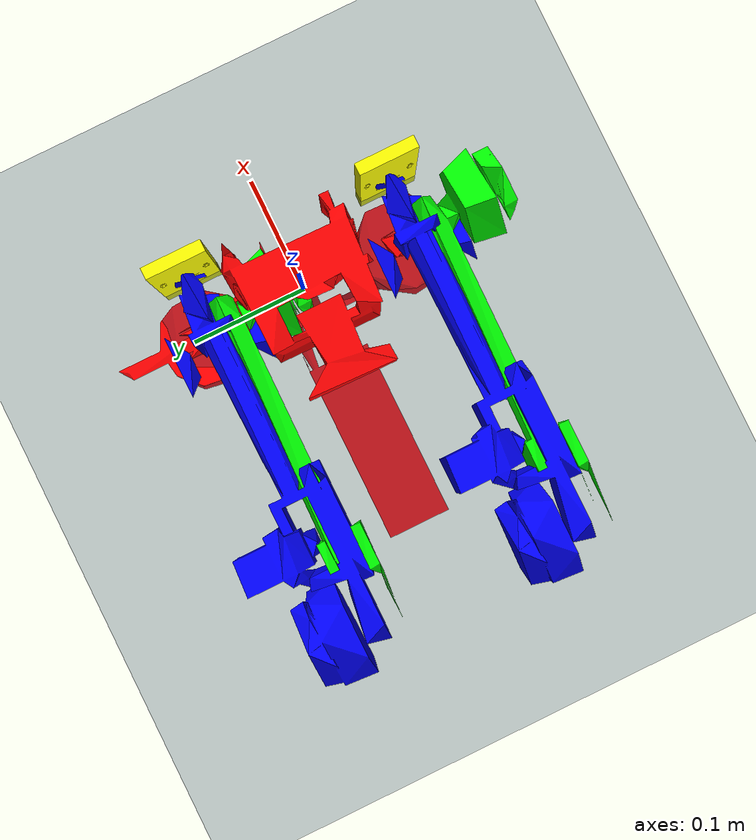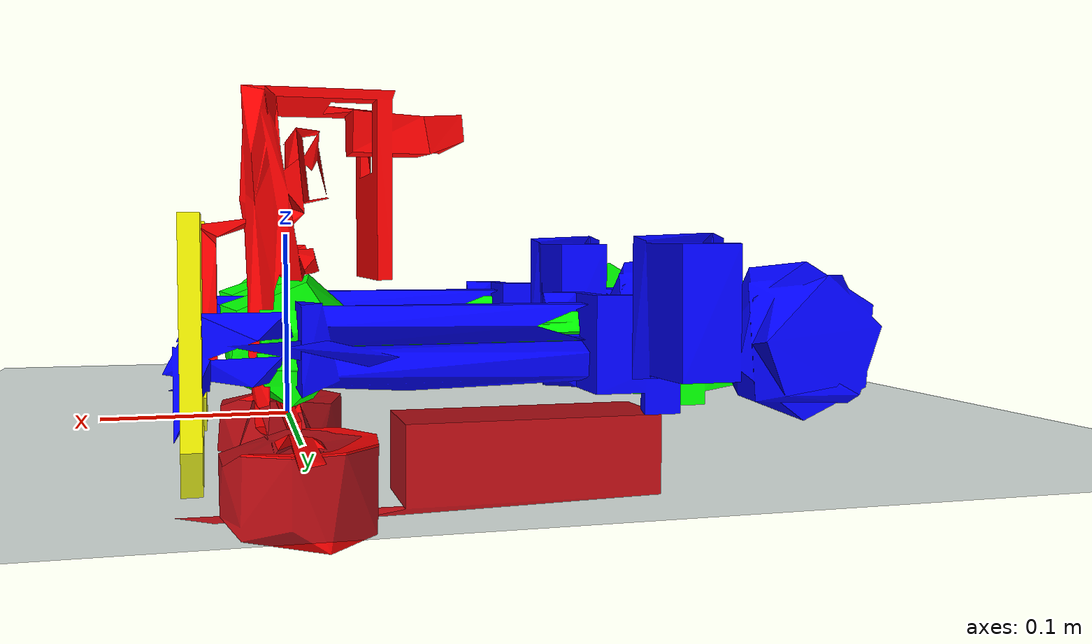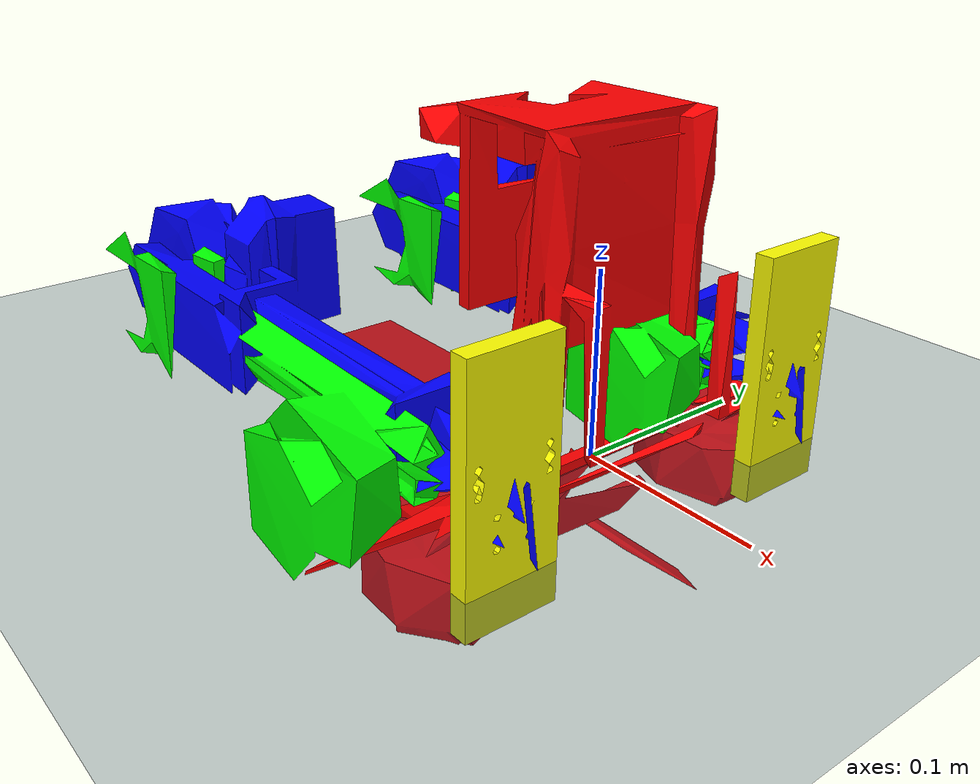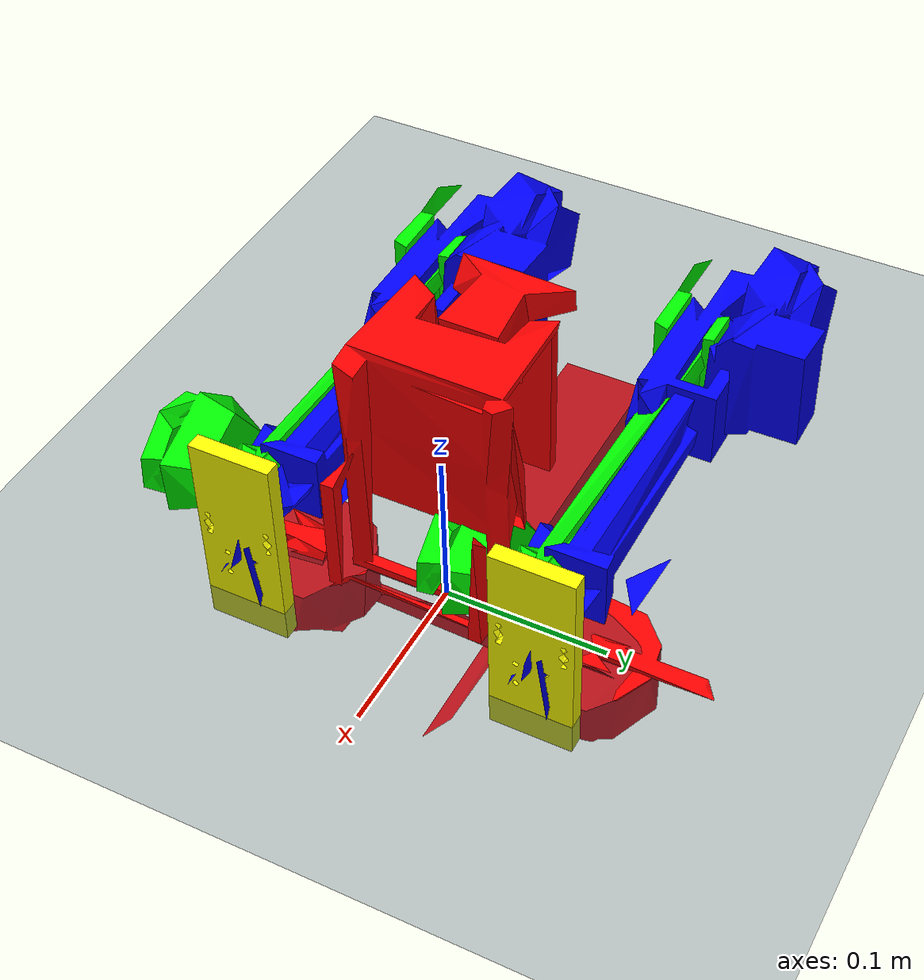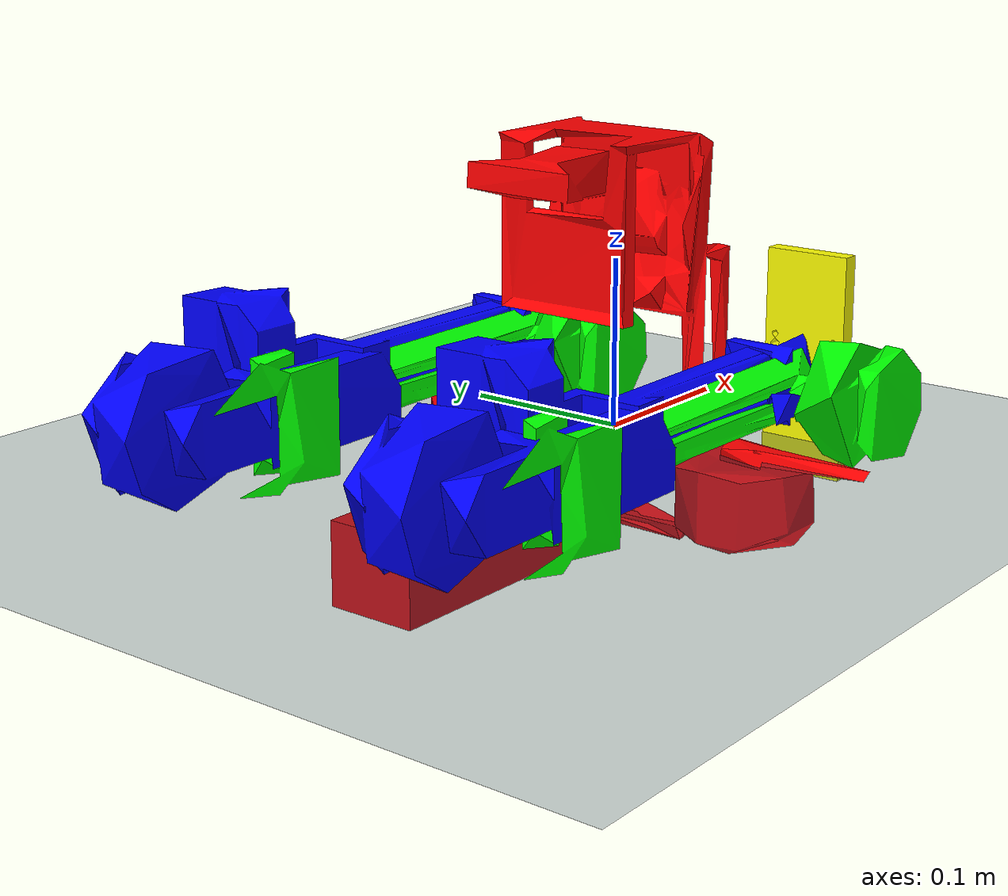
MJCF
<mujoco model="8dof">
    <compiler angle="radian"/>
    <option gravity="0 0 -9.8"/>

    <asset>
        <texture type="skybox" builtin="gradient" rgb1="0 0 0" rgb2="0 0 0" width="512" height="512"/>
        <texture name="body" type="cube" builtin="flat" mark="cross" width="127" height="1278" rgb1="0.8 0.6 0.4" rgb2="0.8 0.6 0.4" markrgb="1 1 1" random="0.01"/>
        <material name="body" texture="body" texuniform="true" rgba="0.8 0.6 0.4 1"/>
        <texture name="grid" type="2d" builtin="checker" width="512" height="512" rgb1=".1 .2 .3" rgb2=".2 .3 .4"/>
        <material name="grid" texture="grid" texrepeat="1 1" texuniform="true" reflectance=".2" shininess="1.0"/>

        <!-- Define materials for different body parts -->
        <material name="chassis_material" rgba="1 0 0 1"/>
        <!-- Red -->
        <material name="thigh_material" rgba="0 1 0 1"/>
        <!-- Green -->
        <material name="shin_material" rgba="0 0 1 1"/>
        <!-- Blue -->
        <material name="foot_material" rgba="1 1 0 1"/>
        <!-- Yellow -->

        <mesh name="chassis_mesh" file="../meshes/chassisv6.stl" scale="0.0001 0.0001 0.0001"/>
        <mesh name="thigh_mesh" file="../meshes/thighv3.stl" scale="0.000001 0.000001 0.000001"/>
        <mesh name="shin_mesh" file="../meshes/shinv4.stl" scale="0.001 0.001 0.001"/>
        <mesh name="foot_mesh" file="../meshes/footv6.stl" scale="0.001 0.001 0.001"/>
    </asset>

    <worldbody>
        <body name="ground" pos="0 0 0">
            <geom type="plane" size="10 10 0.1" material="grid"/>
        </body>

        <body name="chassis" quat="0.7068252 0 0 0.7073883">
            <joint name="free_joint" pos="0 0 0.8" type="free"/>
            <geom type="mesh" mesh="chassis_mesh" material="chassis_material"/>
            <inertial pos="0.000188 0.014911 0.024611" mass="1.9" fullinertia="0.01012 0.000038096 -0.000079858 0.0185 -0.001408 0.01433"/>

            <body name="left_intermediate_link" pos="0.0897 0 0" quat="0 0 0 1">
                <inertial pos="0 0 0" mass="1e-14" diaginertia="1e-14 1e-14 1e-14"/>
                <joint name="hip_left_lateral" type="hinge" pos="0 0 0" axis="0 0 1" damping="0.7" frictionloss="0.9"/>

                <body name="left_thigh" pos="0.01 0 0.044">
                    <geom type="mesh" mesh="thigh_mesh" material="thigh_material"/>
                    <inertial pos="0.043859 -0.040381 -0.000925" mass="0.65958" fullinertia="0.004912 -0.0004527 0.00004645 0.000444 0.00024837 0.004897"/>
                    <joint name="hip_left" type="hinge" pos="0 0 0" axis="1 0 0" damping="0.7" frictionloss="0.9"/>

                    <body name="left_shin" pos="0.02 -0.262 0" quat="0 0 0 1">
                        <geom type="mesh" mesh="shin_mesh" material="shin_material"/>
                        <inertial pos="0.019938 -0.107187 0.000988" mass="1.488501" fullinertia="0.01795 0.000 0.000 0.0009275 0.000 0.0181"/>
                        <joint name="left_knee" type="hinge" pos="0 0 0" axis="1 0 0" damping="0.7" frictionloss="0.9"/>

                        <body name="left_foot" pos="0.02 -0.317 0" quat="0 0 0 1">
                            <geom type="mesh" mesh="foot_mesh" material="foot_material"/>
                            <inertial pos="-0.000813 -0.004976 -0.000007" mass="0.170956" fullinertia="0.0002477 0.000 0.000 0.0002817 0.000 0.000036794431"/>
                            <joint name="left_ankle" type="hinge" pos="0 0 0" axis="1 0 0" damping="0.9" frictionloss="1.14"/>
                        </body>
                    </body>
                </body>
            </body>

            <body name="right_intermediate_link" pos="-0.0897 0 0">
                <inertial pos="0 0 0" mass="1e-14" diaginertia="1e-14 1e-14 1e-14"/>
                <joint name="hip_right_lateral" type="hinge" pos="0 0 0" axis="0 0 1" damping="0.7" frictionloss="0.9"/>

                <body name="right_thigh" pos="-0.01 0 0.044" quat="0 0 0 1">
                    <geom type="mesh" mesh="thigh_mesh" material="thigh_material"/>
                    <inertial pos="0.043859 -0.040381 -0.000925" mass="0.65958" fullinertia="0.004912 -0.0004527 0.00004645 0.000444 0.00024837 0.004897"/>
                    <joint name="hip_right" type="hinge" pos="0 0 0" axis="1 0 0" damping="0.7" frictionloss="0.9"/>

                    <body name="right_shin" pos="0.02 -0.262 0" quat="0 0 0 1">
                        <geom type="mesh" mesh="shin_mesh" material="shin_material"/>
                         <inertial pos="0.019938 -0.107187 0.000988" mass="1.488501" fullinertia="0.01795 0.000 0.000 0.0009275 0.000 0.0181"/>
                        <joint name="right_knee" type="hinge" pos="0 0 0" axis="1 0 0" damping="0.7" frictionloss="0.9"/>

                        <body name="right_foot" pos="0.02 -0.317 0" quat="0 0 0 1">
                            <geom type="mesh" mesh="foot_mesh" material="foot_material"/>
                           <inertial pos="-0.000813 -0.004976 -0.000007" mass="0.170956" fullinertia="0.0002477 0.000 0.000 0.0002817 0.000 0.000036794431"/>
                            <joint name="right_ankle" type="hinge" pos="0 0 0" axis="1 0 0" damping="0.9" frictionloss="1.14"/>
                        </body>
                    </body>
                </body>
            </body>
        </body>
    </worldbody>

    <actuator>
        <!-- Position Actuators -->
        <position ctrllimited="true" ctrlrange="-1 1" gear="1" joint="hip_left_lateral"/>
        <position ctrllimited="true" ctrlrange="-1 1" gear="1" joint="left_knee"/>
        <position ctrllimited="true" ctrlrange="-1 1" gear="1" joint="left_ankle"/>
        <position ctrllimited="true" ctrlrange="-1 1" gear="1" joint="hip_right_lateral"/>
        <position ctrllimited="true" ctrlrange="-1 1" gear="1" joint="right_knee"/>
        <position ctrllimited="true" ctrlrange="-1 1" gear="1" joint="right_ankle"/>
        <position ctrllimited="true" ctrlrange="-1 1" gear="1" joint="hip_left"/>
        <position ctrllimited="true" ctrlrange="-1 1" gear="1" joint="hip_right"/>

        <!-- Velocity Actuators -->
        <velocity ctrllimited="true" ctrlrange="-1 1" gear="1" joint="hip_left_lateral"/>
        <velocity ctrllimited="true" ctrlrange="-1 1" gear="1" joint="left_knee"/>
        <velocity ctrllimited="true" ctrlrange="-1 1" gear="1" joint="left_ankle"/>
        <velocity ctrllimited="true" ctrlrange="-1 1" gear="1" joint="hip_right_lateral"/>
        <velocity ctrllimited="true" ctrlrange="-1 1" gear="1" joint="right_knee"/>
        <velocity ctrllimited="true" ctrlrange="-1 1" gear="1" joint="right_ankle"/>
        <velocity ctrllimited="true" ctrlrange="-1 1" gear="1" joint="hip_left"/>
        <velocity ctrllimited="true" ctrlrange="-1 1" gear="1" joint="hip_right"/>
    </actuator>

</mujoco>
